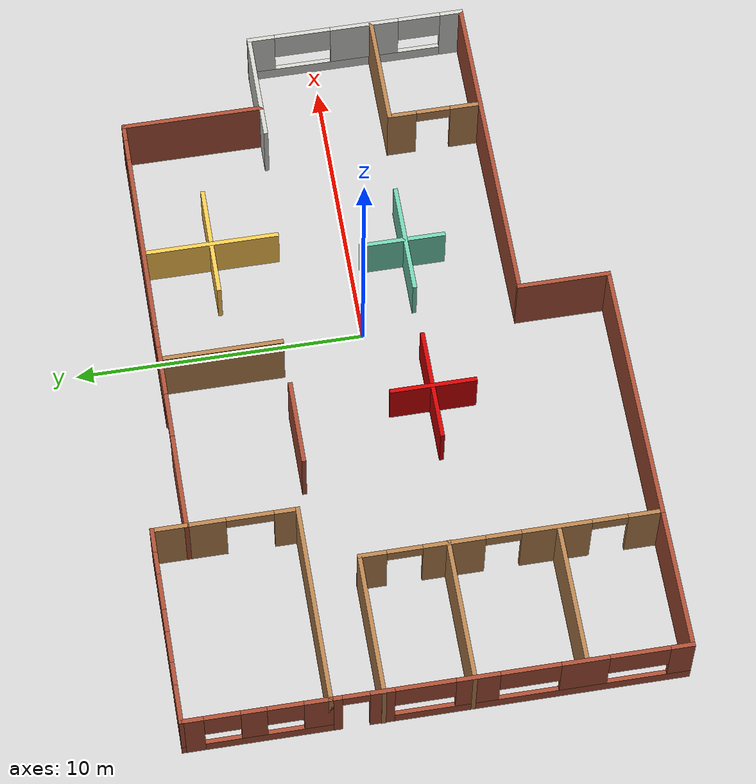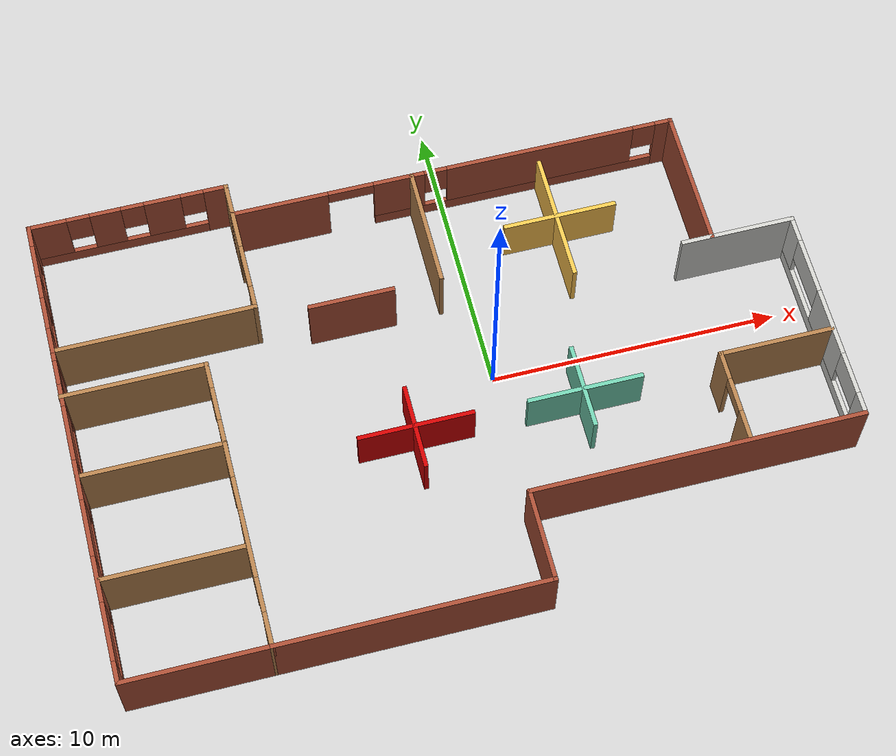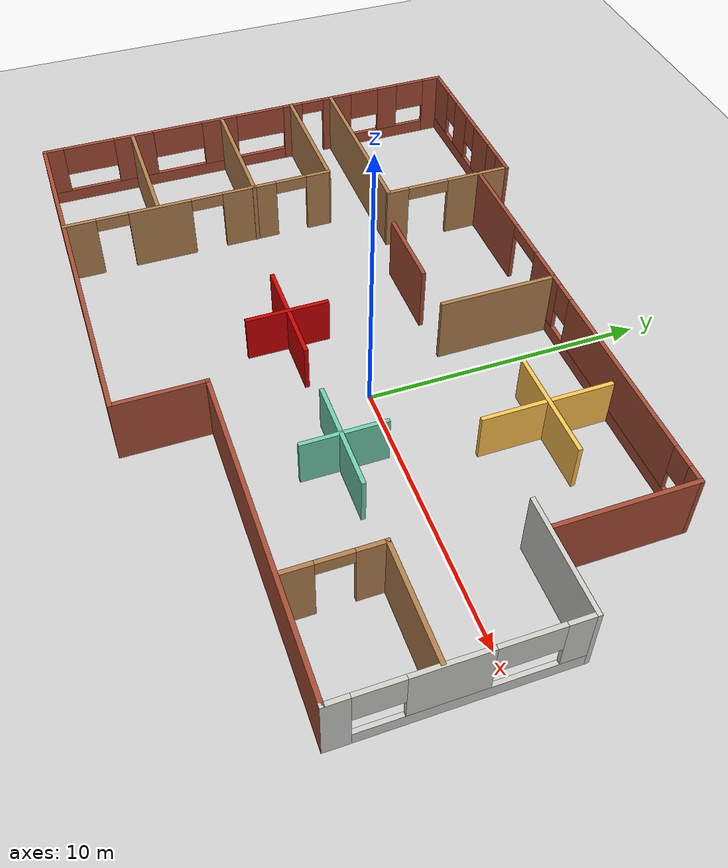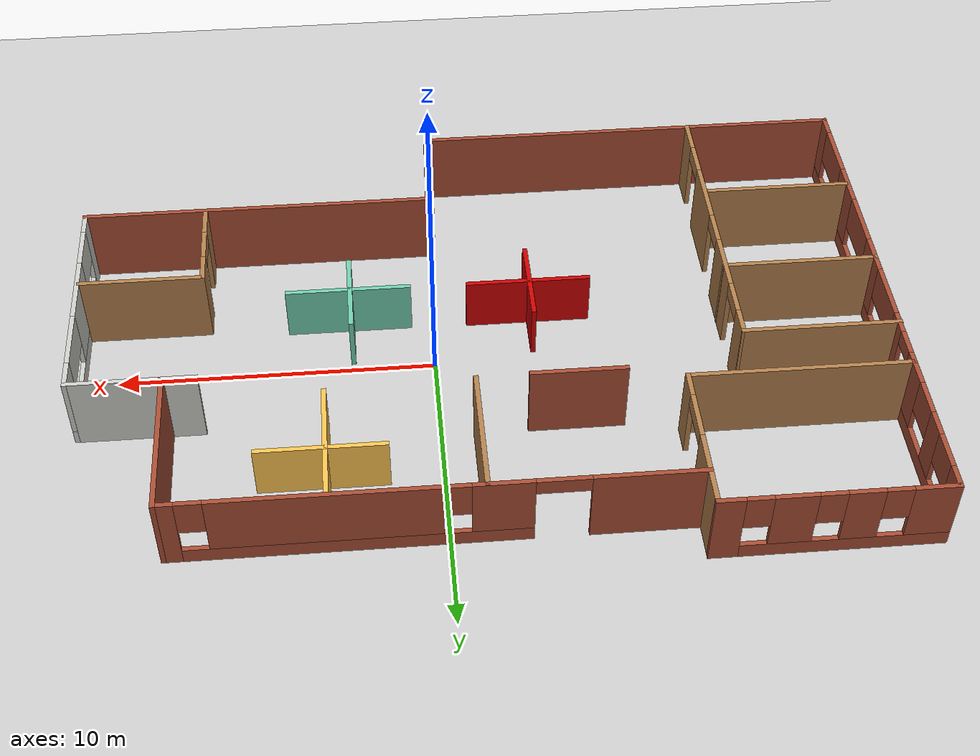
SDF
<sdf version="1.6">
 <world name="default">
  <model name="ground_plane">
   <static>1</static>
   <link name="link">
    <collision name="collision">
     <geometry><plane><normal>0 0 1</normal><size>100 100</size></plane></geometry>
     <surface>
      <contact><collide_bitmask>65535</collide_bitmask></contact>
      <friction><ode><mu>100</mu><mu2>50</mu2></ode></friction>
     </surface>
    </collision>
    <visual name="visual">
     <cast_shadows>0</cast_shadows>
     <geometry><plane><normal>0 0 1</normal><size>100 100</size></plane></geometry>
     <material>
      <script><uri>file://media/materials/scripts/gazebo.material</uri><name>Gazebo/Grey</name></script>
     </material>
    </visual>
   </link>
  </model>
  <model name="office">
   <pose>-1.5738 -0.08796 0 0 -0 0</pose>
   <link name="Wall_0">
    <pose>-12.6413 5.92507 0 0 -0 -1.5708</pose>
    <visual name="Wall_0_Visual_0">
     <pose>-2.10102 0 1.25 0 -0 0</pose>
     <geometry><box><size>0.79796 0.15 2.5</size></box></geometry>
     <material>
      <script><uri>file://media/materials/scripts/gazebo.material</uri><name>Gazebo/Bricks</name></script>
      <ambient>1 1 1 1</ambient>
     </material>
     <meta><layer>0</layer></meta>
    </visual>
    <collision name="Wall_0_Collision_0">
     <geometry><box><size>0.79796 0.15 2.5</size></box></geometry>
     <pose>-2.10102 0 1.25 0 -0 0</pose>
    </collision>
    <visual name="Wall_0_Visual_1">
     <pose>0.39898 0 0.25 0 -0 0</pose>
     <geometry><box><size>4.20204 0.15 0.5</size></box></geometry>
     <material>
      <script><uri>file://media/materials/scripts/gazebo.material</uri><name>Gazebo/Bricks</name></script>
      <ambient>1 1 1 1</ambient>
     </material>
     <meta><layer>0</layer></meta>
    </visual>
    <collision name="Wall_0_Collision_1">
     <geometry><box><size>4.20204 0.15 0.5</size></box></geometry>
     <pose>0.39898 0 0.25 0 -0 0</pose>
    </collision>
    <visual name="Wall_0_Visual_2">
     <pose>-0.076315 0 1.5 0 -0 0</pose>
     <geometry><box><size>0.851451 0.15 2</size></box></geometry>
     <material>
      <script><uri>file://media/materials/scripts/gazebo.material</uri><name>Gazebo/Bricks</name></script>
      <ambient>1 1 1 1</ambient>
     </material>
     <meta><layer>0</layer></meta>
    </visual>
    <collision name="Wall_0_Collision_2">
     <geometry><box><size>0.851451 0.15 2</size></box></geometry>
     <pose>-0.076315 0 1.5 0 -0 0</pose>
    </collision>
    <visual name="Wall_0_Visual_3">
     <pose>2.0247 0 1.5 0 -0 0</pose>
     <geometry><box><size>0.95059 0.15 2</size></box></geometry>
     <material>
      <script><uri>file://media/materials/scripts/gazebo.material</uri><name>Gazebo/Bricks</name></script>
      <ambient>1 1 1 1</ambient>
     </material>
     <meta><layer>0</layer></meta>
    </visual>
    <collision name="Wall_0_Collision_3">
     <geometry><box><size>0.95059 0.15 2</size></box></geometry>
     <pose>2.0247 0 1.5 0 -0 0</pose>
    </collision>
    <visual name="Wall_0_Visual_4">
     <pose>-1.10204 0 1.9 0 -0 0</pose>
     <geometry><box><size>1.2 0.15 1.2</size></box></geometry>
     <material>
      <script><uri>file://media/materials/scripts/gazebo.material</uri><name>Gazebo/Bricks</name></script>
      <ambient>1 1 1 1</ambient>
     </material>
     <meta><layer>0</layer></meta>
    </visual>
    <collision name="Wall_0_Collision_4">
     <geometry><box><size>1.2 0.15 1.2</size></box></geometry>
     <pose>-1.10204 0 1.9 0 -0 0</pose>
    </collision>
    <visual name="Wall_0_Visual_5">
     <pose>0.94941 0 1.9 0 -0 0</pose>
     <geometry><box><size>1.2 0.15 1.2</size></box></geometry>
     <material>
      <script><uri>file://media/materials/scripts/gazebo.material</uri><name>Gazebo/Bricks</name></script>
      <ambient>1 1 1 1</ambient>
     </material>
     <meta><layer>0</layer></meta>
    </visual>
    <collision name="Wall_0_Collision_5">
     <geometry><box><size>1.2 0.15 1.2</size></box></geometry>
     <pose>0.94941 0 1.9 0 -0 0</pose>
    </collision>
   </link>
   <link name="Wall_1">
    <collision name="Wall_1_Collision">
     <geometry><box><size>7 0.15 2.5</size></box></geometry>
     <pose>0 0 1.25 0 -0 0</pose>
    </collision>
    <visual name="Wall_1_Visual">
     <pose>0 0 1.25 0 -0 0</pose>
     <geometry><box><size>7 0.15 2.5</size></box></geometry>
     <material>
      <script><uri>file://media/materials/scripts/gazebo.material</uri><name>Gazebo/Wood</name></script>
      <ambient>1 1 1 1</ambient>
     </material>
     <meta><layer>0</layer></meta>
    </visual>
    <pose>-9.21631 3.50007 0 0 -0 0</pose>
   </link>
   <link name="Wall_12">
    <collision name="Wall_12_Collision">
     <geometry><box><size>4.75 0.15 2.5</size></box></geometry>
     <pose>0 0 1.25 0 -0 0</pose>
    </collision>
    <visual name="Wall_12_Visual">
     <pose>0 0 1.25 0 -0 0</pose>
     <geometry><box><size>4.75 0.15 2.5</size></box></geometry>
     <material>
      <script><uri>file://media/materials/scripts/gazebo.material</uri><name>Gazebo/Wood</name></script>
      <ambient>1 1 1 1</ambient>
     </material>
     <meta><layer>0</layer></meta>
    </visual>
    <pose>-10.2516 -4.8726 0 0 -0 0</pose>
   </link>
   <link name="Wall_19">
    <collision name="Wall_19_Collision">
     <geometry><box><size>5 0.15 2.5</size></box></geometry>
     <pose>0 0 1.25 0 -0 0</pose>
    </collision>
    <visual name="Wall_19_Visual">
     <pose>0 0 1.25 0 -0 0</pose>
     <geometry><box><size>5 0.15 2.5</size></box></geometry>
     <material>
      <script><uri>file://media/materials/scripts/gazebo.material</uri><name>Gazebo/Wood</name></script>
      <ambient>1 1 1 1</ambient>
     </material>
     <meta><layer>0</layer></meta>
    </visual>
    <pose>-10.2173 -1.19338 0 0 -0 0</pose>
   </link>
   <link name="Wall_2">
    <pose>-5.79131 5.92507 0 0 -0 1.5708</pose>
    <visual name="Wall_2_Visual_0">
     <pose>-2.06484 0 1.25 0 -0 0</pose>
     <geometry><box><size>0.870327 0.15 2.5</size></box></geometry>
     <material>
      <script><uri>file://media/materials/scripts/gazebo.material</uri><name>Gazebo/Wood</name></script>
      <ambient>1 1 1 1</ambient>
     </material>
     <meta><layer>0</layer></meta>
    </visual>
    <collision name="Wall_2_Collision_0">
     <geometry><box><size>0.870327 0.15 2.5</size></box></geometry>
     <pose>-2.06484 0 1.25 0 -0 0</pose>
    </collision>
    <visual name="Wall_2_Visual_1">
     <pose>1.23516 0 1.25 0 -0 0</pose>
     <geometry><box><size>2.52967 0.15 2.5</size></box></geometry>
     <material>
      <script><uri>file://media/materials/scripts/gazebo.material</uri><name>Gazebo/Wood</name></script>
      <ambient>1 1 1 1</ambient>
     </material>
     <meta><layer>0</layer></meta>
    </visual>
    <collision name="Wall_2_Collision_1">
     <geometry><box><size>2.52967 0.15 2.5</size></box></geometry>
     <pose>1.23516 0 1.25 0 -0 0</pose>
    </collision>
    <visual name="Wall_2_Visual_2">
     <pose>-0.829673 0 2.25 0 -0 0</pose>
     <geometry><box><size>1.6 0.15 0.5</size></box></geometry>
     <material>
      <script><uri>file://media/materials/scripts/gazebo.material</uri><name>Gazebo/Wood</name></script>
      <ambient>1 1 1 1</ambient>
     </material>
     <meta><layer>0</layer></meta>
    </visual>
    <collision name="Wall_2_Collision_2">
     <geometry><box><size>1.6 0.15 0.5</size></box></geometry>
     <pose>-0.829673 0 2.25 0 -0 0</pose>
    </collision>
   </link>
   <link name="Wall_21">
    <collision name="Wall_21_Collision">
     <geometry><box><size>9.25 0.15 2.5</size></box></geometry>
     <pose>0 0 1.25 0 -0 0</pose>
    </collision>
    <visual name="Wall_21_Visual">
     <pose>0 0 1.25 0 -0 0</pose>
     <geometry><box><size>9.25 0.15 2.5</size></box></geometry>
     <material>
      <script><uri>file://media/materials/scripts/gazebo.material</uri><name>Gazebo/Bricks</name></script>
      <ambient>1 1 1 1</ambient>
     </material>
     <meta><layer>0</layer></meta>
    </visual>
    <pose>-3.24131 -8.34993 0 0 -0 0</pose>
   </link>
   <link name="Wall_22">
    <collision name="Wall_22_Collision">
     <geometry><box><size>3.25 0.15 2.5</size></box></geometry>
     <pose>0 0 1.25 0 -0 0</pose>
    </collision>
    <visual name="Wall_22_Visual">
     <pose>0 0 1.25 0 -0 0</pose>
     <geometry><box><size>3.25 0.15 2.5</size></box></geometry>
     <material>
      <script><uri>file://media/materials/scripts/gazebo.material</uri><name>Gazebo/Bricks</name></script>
      <ambient>1 1 1 1</ambient>
     </material>
     <meta><layer>0</layer></meta>
    </visual>
    <pose>1.30869 -6.79992 0 0 -0 1.5708</pose>
   </link>
   <link name="Wall_23">
    <collision name="Wall_23_Collision">
     <geometry><box><size>11.5 0.15 2.5</size></box></geometry>
     <pose>0 0 1.25 0 -0 0</pose>
    </collision>
    <visual name="Wall_23_Visual">
     <pose>0 0 1.25 0 -0 0</pose>
     <geometry><box><size>11.5 0.15 2.5</size></box></geometry>
     <material>
      <script><uri>file://media/materials/scripts/gazebo.material</uri><name>Gazebo/Bricks</name></script>
      <ambient>1 1 1 1</ambient>
     </material>
     <meta><layer>0</layer></meta>
    </visual>
    <pose>6.98369 -5.24993 0 0 -0 0</pose>
   </link>
   <link name="Wall_24">
    <pose>12.6587 -1.44992 0 0 -0 1.5708</pose>
    <visual name="Wall_24_Visual_0">
     <pose>-3.45904 0 1.25 0 -0 0</pose>
     <geometry><box><size>0.831925 0.15 2.5</size></box></geometry>
     <material>
      <script><uri>file://media/materials/scripts/gazebo.material</uri><name>Gazebo/CeilingTiled</name></script>
      <ambient>1 1 1 1</ambient>
     </material>
     <meta><layer>0</layer></meta>
    </visual>
    <collision name="Wall_24_Collision_0">
     <geometry><box><size>0.831925 0.15 2.5</size></box></geometry>
     <pose>-3.45904 0 1.25 0 -0 0</pose>
    </collision>
    <visual name="Wall_24_Visual_1">
     <pose>0.415962 0 0.25 0 -0 0</pose>
     <geometry><box><size>6.91807 0.15 0.5</size></box></geometry>
     <material>
      <script><uri>file://media/materials/scripts/gazebo.material</uri><name>Gazebo/CeilingTiled</name></script>
      <ambient>1 1 1 1</ambient>
     </material>
     <meta><layer>0</layer></meta>
    </visual>
    <collision name="Wall_24_Collision_1">
     <geometry><box><size>6.91807 0.15 0.5</size></box></geometry>
     <pose>0.415962 0 0.25 0 -0 0</pose>
    </collision>
    <visual name="Wall_24_Visual_2">
     <pose>-0.320599 0 1.5 0 -0 0</pose>
     <geometry><box><size>2.44495 0.15 2</size></box></geometry>
     <material>
      <script><uri>file://media/materials/scripts/gazebo.material</uri><name>Gazebo/CeilingTiled</name></script>
      <ambient>1 1 1 1</ambient>
     </material>
     <meta><layer>0</layer></meta>
    </visual>
    <collision name="Wall_24_Collision_2">
     <geometry><box><size>2.44495 0.15 2</size></box></geometry>
     <pose>-0.320599 0 1.5 0 -0 0</pose>
    </collision>
    <visual name="Wall_24_Visual_3">
     <pose>3.38844 0 1.5 0 -0 0</pose>
     <geometry><box><size>0.973122 0.15 2</size></box></geometry>
     <material>
      <script><uri>file://media/materials/scripts/gazebo.material</uri><name>Gazebo/CeilingTiled</name></script>
      <ambient>1 1 1 1</ambient>
     </material>
     <meta><layer>0</layer></meta>
    </visual>
    <collision name="Wall_24_Collision_3">
     <geometry><box><size>0.973122 0.15 2</size></box></geometry>
     <pose>3.38844 0 1.5 0 -0 0</pose>
    </collision>
    <visual name="Wall_24_Visual_4">
     <pose>-2.29307 0 1.9 0 -0 0</pose>
     <geometry><box><size>1.5 0.15 1.2</size></box></geometry>
     <material>
      <script><uri>file://media/materials/scripts/gazebo.material</uri><name>Gazebo/CeilingTiled</name></script>
      <ambient>1 1 1 1</ambient>
     </material>
     <meta><layer>0</layer></meta>
    </visual>
    <collision name="Wall_24_Collision_4">
     <geometry><box><size>1.5 0.15 1.2</size></box></geometry>
     <pose>-2.29307 0 1.9 0 -0 0</pose>
    </collision>
    <visual name="Wall_24_Visual_5">
     <pose>1.90188 0 1.9 0 -0 0</pose>
     <geometry><box><size>2 0.15 1.2</size></box></geometry>
     <material>
      <script><uri>file://media/materials/scripts/gazebo.material</uri><name>Gazebo/CeilingTiled</name></script>
      <ambient>1 1 1 1</ambient>
     </material>
     <meta><layer>0</layer></meta>
    </visual>
    <collision name="Wall_24_Collision_5">
     <geometry><box><size>2 0.15 1.2</size></box></geometry>
     <pose>1.90188 0 1.9 0 -0 0</pose>
    </collision>
   </link>
   <link name="Wall_25">
    <collision name="Wall_25_Collision">
     <geometry><box><size>4 0.15 2.5</size></box></geometry>
     <pose>0 0 1.25 0 -0 0</pose>
    </collision>
    <visual name="Wall_25_Visual">
     <pose>0 0 1.25 0 -0 0</pose>
     <geometry><box><size>4 0.15 2.5</size></box></geometry>
     <material>
      <script><uri>file://media/materials/scripts/gazebo.material</uri><name>Gazebo/CeilingTiled</name></script>
      <ambient>1 1 1 1</ambient>
     </material>
     <meta><layer>0</layer></meta>
    </visual>
    <pose>10.7337 2.35007 0 0 -0 3.14159</pose>
   </link>
   <link name="Wall_27">
    <collision name="Wall_27_Collision">
     <geometry><box><size>4 0.15 2.5</size></box></geometry>
     <pose>0 0 1.25 0 -0 0</pose>
    </collision>
    <visual name="Wall_27_Visual">
     <pose>0 0 1.25 0 -0 0</pose>
     <geometry><box><size>4 0.15 2.5</size></box></geometry>
     <material>
      <script><uri>file://media/materials/scripts/gazebo.material</uri><name>Gazebo/Wood</name></script>
      <ambient>1 1 1 1</ambient>
     </material>
     <meta><layer>0</layer></meta>
    </visual>
    <pose>10.6699 -2.02159 0 0 -0 3.14159</pose>
   </link>
   <link name="Wall_28">
    <pose>8.74488 -3.57159 0 0 -0 -1.5708</pose>
    <visual name="Wall_28_Visual_0">
     <pose>-1.11107 0 1.25 0 -0 0</pose>
     <geometry><box><size>1.02786 0.15 2.5</size></box></geometry>
     <material>
      <script><uri>file://media/materials/scripts/gazebo.material</uri><name>Gazebo/Wood</name></script>
      <ambient>1 1 1 1</ambient>
     </material>
     <meta><layer>0</layer></meta>
    </visual>
    <collision name="Wall_28_Collision_0">
     <geometry><box><size>1.02786 0.15 2.5</size></box></geometry>
     <pose>-1.11107 0 1.25 0 -0 0</pose>
    </collision>
    <visual name="Wall_28_Visual_1">
     <pose>1.11393 0 1.25 0 -0 0</pose>
     <geometry><box><size>1.02214 0.15 2.5</size></box></geometry>
     <material>
      <script><uri>file://media/materials/scripts/gazebo.material</uri><name>Gazebo/Wood</name></script>
      <ambient>1 1 1 1</ambient>
     </material>
     <meta><layer>0</layer></meta>
    </visual>
    <collision name="Wall_28_Collision_1">
     <geometry><box><size>1.02214 0.15 2.5</size></box></geometry>
     <pose>1.11393 0 1.25 0 -0 0</pose>
    </collision>
    <visual name="Wall_28_Visual_2">
     <pose>0.002857 0 2.25 0 -0 0</pose>
     <geometry><box><size>1.2 0.15 0.5</size></box></geometry>
     <material>
      <script><uri>file://media/materials/scripts/gazebo.material</uri><name>Gazebo/Wood</name></script>
      <ambient>1 1 1 1</ambient>
     </material>
     <meta><layer>0</layer></meta>
    </visual>
    <collision name="Wall_28_Collision_2">
     <geometry><box><size>1.2 0.15 0.5</size></box></geometry>
     <pose>0.002857 0 2.25 0 -0 0</pose>
    </collision>
   </link>
   <link name="Wall_3">
    <pose>-9.21631 8.35008 0 0 -0 3.14159</pose>
    <visual name="Wall_3_Visual_0">
     <pose>-3.0632 0 1.25 0 -0 0</pose>
     <geometry><box><size>0.873598 0.15 2.5</size></box></geometry>
     <material>
      <script><uri>file://media/materials/scripts/gazebo.material</uri><name>Gazebo/Bricks</name></script>
      <ambient>1 1 1 1</ambient>
     </material>
     <meta><layer>0</layer></meta>
    </visual>
    <collision name="Wall_3_Collision_0">
     <geometry><box><size>0.873598 0.15 2.5</size></box></geometry>
     <pose>-3.0632 0 1.25 0 -0 0</pose>
    </collision>
    <visual name="Wall_3_Visual_1">
     <pose>0.436799 0 0.25 0 -0 0</pose>
     <geometry><box><size>6.1264 0.15 0.5</size></box></geometry>
     <material>
      <script><uri>file://media/materials/scripts/gazebo.material</uri><name>Gazebo/Bricks</name></script>
      <ambient>1 1 1 1</ambient>
     </material>
     <meta><layer>0</layer></meta>
    </visual>
    <collision name="Wall_3_Collision_1">
     <geometry><box><size>6.1264 0.15 0.5</size></box></geometry>
     <pose>0.436799 0 0.25 0 -0 0</pose>
    </collision>
    <visual name="Wall_3_Visual_2">
     <pose>-1.18753 0 1.5 0 -0 0</pose>
     <geometry><box><size>1.27775 0.15 2</size></box></geometry>
     <material>
      <script><uri>file://media/materials/scripts/gazebo.material</uri><name>Gazebo/Bricks</name></script>
      <ambient>1 1 1 1</ambient>
     </material>
     <meta><layer>0</layer></meta>
    </visual>
    <collision name="Wall_3_Collision_2">
     <geometry><box><size>1.27775 0.15 2</size></box></geometry>
     <pose>-1.18753 0 1.5 0 -0 0</pose>
    </collision>
    <visual name="Wall_3_Visual_3">
     <pose>0.791597 0 1.5 0 -0 0</pose>
     <geometry><box><size>1.0805 0.15 2</size></box></geometry>
     <material>
      <script><uri>file://media/materials/scripts/gazebo.material</uri><name>Gazebo/Bricks</name></script>
      <ambient>1 1 1 1</ambient>
     </material>
     <meta><layer>0</layer></meta>
    </visual>
    <collision name="Wall_3_Collision_3">
     <geometry><box><size>1.0805 0.15 2</size></box></geometry>
     <pose>0.791597 0 1.5 0 -0 0</pose>
    </collision>
    <visual name="Wall_3_Visual_4">
     <pose>2.81592 0 1.5 0 -0 0</pose>
     <geometry><box><size>1.36816 0.15 2</size></box></geometry>
     <material>
      <script><uri>file://media/materials/scripts/gazebo.material</uri><name>Gazebo/Bricks</name></script>
      <ambient>1 1 1 1</ambient>
     </material>
     <meta><layer>0</layer></meta>
    </visual>
    <collision name="Wall_3_Collision_4">
     <geometry><box><size>1.36816 0.15 2</size></box></geometry>
     <pose>2.81592 0 1.5 0 -0 0</pose>
    </collision>
    <visual name="Wall_3_Visual_5">
     <pose>-2.2264 0 1.9 0 -0 0</pose>
     <geometry><box><size>0.8 0.15 1.2</size></box></geometry>
     <material>
      <script><uri>file://media/materials/scripts/gazebo.material</uri><name>Gazebo/Bricks</name></script>
      <ambient>1 1 1 1</ambient>
     </material>
     <meta><layer>0</layer></meta>
    </visual>
    <collision name="Wall_3_Collision_5">
     <geometry><box><size>0.8 0.15 1.2</size></box></geometry>
     <pose>-2.2264 0 1.9 0 -0 0</pose>
    </collision>
    <visual name="Wall_3_Visual_6">
     <pose>-0.148651 0 1.9 0 -0 0</pose>
     <geometry><box><size>0.8 0.15 1.2</size></box></geometry>
     <material>
      <script><uri>file://media/materials/scripts/gazebo.material</uri><name>Gazebo/Bricks</name></script>
      <ambient>1 1 1 1</ambient>
     </material>
     <meta><layer>0</layer></meta>
    </visual>
    <collision name="Wall_3_Collision_6">
     <geometry><box><size>0.8 0.15 1.2</size></box></geometry>
     <pose>-0.148651 0 1.9 0 -0 0</pose>
    </collision>
    <visual name="Wall_3_Visual_7">
     <pose>1.73185 0 1.9 0 -0 0</pose>
     <geometry><box><size>0.8 0.15 1.2</size></box></geometry>
     <material>
      <script><uri>file://media/materials/scripts/gazebo.material</uri><name>Gazebo/Bricks</name></script>
      <ambient>1 1 1 1</ambient>
     </material>
     <meta><layer>0</layer></meta>
    </visual>
    <collision name="Wall_3_Collision_7">
     <geometry><box><size>0.8 0.15 1.2</size></box></geometry>
     <pose>1.73185 0 1.9 0 -0 0</pose>
    </collision>
   </link>
   <link name="Wall_30">
    <collision name="Wall_30_Collision">
     <geometry><box><size>5 0.15 2.5</size></box></geometry>
     <pose>0 0 1.25 0 -0 0</pose>
    </collision>
    <visual name="Wall_30_Visual">
     <pose>0 0 1.25 0 -0 0</pose>
     <geometry><box><size>5 0.15 2.5</size></box></geometry>
     <material>
      <script><uri>file://media/materials/scripts/gazebo.material</uri><name>Gazebo/Bricks</name></script>
      <ambient>1 1 1 1</ambient>
     </material>
     <meta><layer>0</layer></meta>
    </visual>
    <pose>9.80511 4.78099 0 0 -0 1.5708</pose>
   </link>
   <link name="Wall_31">
    <pose>2.00511 7.20599 0 0 -0 3.14159</pose>
    <visual name="Wall_31_Visual_0">
     <pose>-7.55649 0 1.25 0 -0 0</pose>
     <geometry><box><size>0.637024 0.15 2.5</size></box></geometry>
     <material>
      <script><uri>file://media/materials/scripts/gazebo.material</uri><name>Gazebo/Bricks</name></script>
      <ambient>1 1 1 1</ambient>
     </material>
     <meta><layer>0</layer></meta>
    </visual>
    <collision name="Wall_31_Collision_0">
     <geometry><box><size>0.637024 0.15 2.5</size></box></geometry>
     <pose>-7.55649 0 1.25 0 -0 0</pose>
    </collision>
    <visual name="Wall_31_Visual_1">
     <pose>6.16793 0 1.25 0 -0 0</pose>
     <geometry><box><size>3.41413 0.15 2.5</size></box></geometry>
     <material>
      <script><uri>file://media/materials/scripts/gazebo.material</uri><name>Gazebo/Bricks</name></script>
      <ambient>1 1 1 1</ambient>
     </material>
     <meta><layer>0</layer></meta>
    </visual>
    <collision name="Wall_31_Collision_1">
     <geometry><box><size>3.41413 0.15 2.5</size></box></geometry>
     <pose>6.16793 0 1.25 0 -0 0</pose>
    </collision>
    <visual name="Wall_31_Visual_2">
     <pose>-2.18855 0 0.25 0 -0 0</pose>
     <geometry><box><size>10.0988 0.15 0.5</size></box></geometry>
     <material>
      <script><uri>file://media/materials/scripts/gazebo.material</uri><name>Gazebo/Bricks</name></script>
      <ambient>1 1 1 1</ambient>
     </material>
     <meta><layer>0</layer></meta>
    </visual>
    <collision name="Wall_31_Collision_2">
     <geometry><box><size>10.0988 0.15 0.5</size></box></geometry>
     <pose>-2.18855 0 0.25 0 -0 0</pose>
    </collision>
    <visual name="Wall_31_Visual_3">
     <pose>-3.09013 0 1.5 0 -0 0</pose>
     <geometry><box><size>6.69569 0.15 2</size></box></geometry>
     <material>
      <script><uri>file://media/materials/scripts/gazebo.material</uri><name>Gazebo/Bricks</name></script>
      <ambient>1 1 1 1</ambient>
     </material>
     <meta><layer>0</layer></meta>
    </visual>
    <collision name="Wall_31_Collision_3">
     <geometry><box><size>6.69569 0.15 2</size></box></geometry>
     <pose>-3.09013 0 1.5 0 -0 0</pose>
    </collision>
    <visual name="Wall_31_Visual_4">
     <pose>1.95929 0 1.5 0 -0 0</pose>
     <geometry><box><size>1.80316 0.15 2</size></box></geometry>
     <material>
      <script><uri>file://media/materials/scripts/gazebo.material</uri><name>Gazebo/Bricks</name></script>
      <ambient>1 1 1 1</ambient>
     </material>
     <meta><layer>0</layer></meta>
    </visual>
    <collision name="Wall_31_Collision_4">
     <geometry><box><size>1.80316 0.15 2</size></box></geometry>
     <pose>1.95929 0 1.5 0 -0 0</pose>
    </collision>
    <visual name="Wall_31_Visual_5">
     <pose>-6.83798 0 1.9 0 -0 0</pose>
     <geometry><box><size>0.8 0.15 1.2</size></box></geometry>
     <material>
      <script><uri>file://media/materials/scripts/gazebo.material</uri><name>Gazebo/Bricks</name></script>
      <ambient>1 1 1 1</ambient>
     </material>
     <meta><layer>0</layer></meta>
    </visual>
    <collision name="Wall_31_Collision_5">
     <geometry><box><size>0.8 0.15 1.2</size></box></geometry>
     <pose>-6.83798 0 1.9 0 -0 0</pose>
    </collision>
    <visual name="Wall_31_Visual_6">
     <pose>0.657708 0 1.9 0 -0 0</pose>
     <geometry><box><size>0.8 0.15 1.2</size></box></geometry>
     <material>
      <script><uri>file://media/materials/scripts/gazebo.material</uri><name>Gazebo/Bricks</name></script>
      <ambient>1 1 1 1</ambient>
     </material>
     <meta><layer>0</layer></meta>
    </visual>
    <collision name="Wall_31_Collision_6">
     <geometry><box><size>0.8 0.15 1.2</size></box></geometry>
     <pose>0.657708 0 1.9 0 -0 0</pose>
    </collision>
    <visual name="Wall_31_Visual_7">
     <pose>3.66087 0 2.25 0 -0 0</pose>
     <geometry><box><size>1.6 0.15 0.5</size></box></geometry>
     <material>
      <script><uri>file://media/materials/scripts/gazebo.material</uri><name>Gazebo/Bricks</name></script>
      <ambient>1 1 1 1</ambient>
     </material>
     <meta><layer>0</layer></meta>
    </visual>
    <collision name="Wall_31_Collision_7">
     <geometry><box><size>1.6 0.15 0.5</size></box></geometry>
     <pose>3.66087 0 2.25 0 -0 0</pose>
    </collision>
   </link>
   <link name="Wall_33">
    <collision name="Wall_33_Collision">
     <geometry><box><size>4.25 0.15 2.5</size></box></geometry>
     <pose>0 0 1.25 0 -0 0</pose>
    </collision>
    <visual name="Wall_33_Visual">
     <pose>0 0 1.25 0 -0 0</pose>
     <geometry><box><size>4.25 0.15 2.5</size></box></geometry>
     <material>
      <script><uri>file://media/materials/scripts/gazebo.material</uri><name>Gazebo/Wood</name></script>
      <ambient>1 1 1 1</ambient>
     </material>
     <meta><layer>0</layer></meta>
    </visual>
    <pose>0.500764 5.12338 0 0 -0 -1.5708</pose>
   </link>
   <link name="Wall_35">
    <collision name="Wall_35_Collision">
     <geometry><box><size>4.75 0.15 1.8</size></box></geometry>
     <pose>0 0 0.9 0 -0 0</pose>
    </collision>
    <visual name="Wall_35_Visual">
     <pose>0 0 0.9 0 -0 0</pose>
     <geometry><box><size>4.75 0.15 1.8</size></box></geometry>
     <material>
      <script><uri>file://media/materials/scripts/gazebo.material</uri><name>Gazebo/Grey</name></script>
      <ambient>1 0.764706 0.305882 1</ambient>
     </material>
     <meta><layer>0</layer></meta>
    </visual>
    <pose>5.05557 4.85856 0 0 -0 -1.5708</pose>
   </link>
   <link name="Wall_37">
    <collision name="Wall_37_Collision">
     <geometry><box><size>4 0.15 1.8</size></box></geometry>
     <pose>0 0 0.9 0 -0 0</pose>
    </collision>
    <visual name="Wall_37_Visual">
     <pose>0 0 0.9 0 -0 0</pose>
     <geometry><box><size>4 0.15 1.8</size></box></geometry>
     <material>
      <script><uri>file://media/materials/scripts/gazebo.material</uri><name>Gazebo/Grey</name></script>
      <ambient>1 0.764706 0.305882 1</ambient>
     </material>
     <meta><layer>0</layer></meta>
    </visual>
    <pose>5.17957 4.83056 0 0 -0 0</pose>
   </link>
   <link name="Wall_39">
    <collision name="Wall_39_Collision">
     <geometry><box><size>3 0.15 2.5</size></box></geometry>
     <pose>0 0 1.25 0 -0 0</pose>
    </collision>
    <visual name="Wall_39_Visual">
     <pose>0 0 1.25 0 -0 0</pose>
     <geometry><box><size>3 0.15 2.5</size></box></geometry>
     <material>
      <script><uri>file://media/materials/scripts/gazebo.material</uri><name>Gazebo/Bricks</name></script>
      <ambient>1 1 1 1</ambient>
     </material>
     <meta><layer>0</layer></meta>
    </visual>
    <pose>-2.60246 3.02942 0 0 -0 3.14159</pose>
   </link>
   <link name="Wall_41">
    <collision name="Wall_41_Collision">
     <geometry><box><size>4 0.15 1.8</size></box></geometry>
     <pose>0 0 0.9 0 -0 0</pose>
    </collision>
    <visual name="Wall_41_Visual">
     <pose>0 0 0.9 0 -0 0</pose>
     <geometry><box><size>4 0.15 1.8</size></box></geometry>
     <material>
      <script><uri>file://media/materials/scripts/gazebo.material</uri><name>Gazebo/Grey</name></script>
      <ambient>0.8 0 0 1</ambient>
     </material>
     <meta><layer>0</layer></meta>
    </visual>
    <pose>-1.56643 -1.75744 0 0 -0 0</pose>
   </link>
   <link name="Wall_43">
    <collision name="Wall_43_Collision">
     <geometry><box><size>3 0.15 1.8</size></box></geometry>
     <pose>0 0 0.9 0 -0 0</pose>
    </collision>
    <visual name="Wall_43_Visual">
     <pose>0 0 0.9 0 -0 0</pose>
     <geometry><box><size>3 0.15 1.8</size></box></geometry>
     <material>
      <script><uri>file://media/materials/scripts/gazebo.material</uri><name>Gazebo/Grey</name></script>
      <ambient>0.8 0 0 1</ambient>
     </material>
     <meta><layer>0</layer></meta>
    </visual>
    <pose>-1.61128 -1.78879 0 0 -0 -1.5708</pose>
   </link>
   <link name="Wall_45">
    <collision name="Wall_45_Collision">
     <geometry><box><size>4 0.15 1.8</size></box></geometry>
     <pose>0 0 0.9 0 -0 0</pose>
    </collision>
    <visual name="Wall_45_Visual">
     <pose>0 0 0.9 0 -0 0</pose>
     <geometry><box><size>4 0.15 1.8</size></box></geometry>
     <material>
      <script><uri>file://media/materials/scripts/gazebo.material</uri><name>Gazebo/Grey</name></script>
      <ambient>0.435294 0.796078 0.67451 1</ambient>
     </material>
     <meta><layer>0</layer></meta>
    </visual>
    <pose>4.20657 -1.80944 0 0 -0 0</pose>
   </link>
   <link name="Wall_47">
    <collision name="Wall_47_Collision">
     <geometry><box><size>3 0.15 1.8</size></box></geometry>
     <pose>0 0 0.9 0 -0 0</pose>
    </collision>
    <visual name="Wall_47_Visual">
     <pose>0 0 0.9 0 -0 0</pose>
     <geometry><box><size>3 0.15 1.8</size></box></geometry>
     <material>
      <script><uri>file://media/materials/scripts/gazebo.material</uri><name>Gazebo/Grey</name></script>
      <ambient>0.435294 0.796078 0.67451 1</ambient>
     </material>
     <meta><layer>0</layer></meta>
    </visual>
    <pose>4.14857 -1.70944 0 0 -0 -1.5708</pose>
   </link>
   <link name="Wall_5">
    <pose>-12.6413 -2.42492 0 0 -0 -1.5708</pose>
    <visual name="Wall_5_Visual_0">
     <pose>-5.7769 0 1.25 0 -0 0</pose>
     <geometry><box><size>0.446198 0.15 2.5</size></box></geometry>
     <material>
      <script><uri>file://media/materials/scripts/gazebo.material</uri><name>Gazebo/Bricks</name></script>
      <ambient>1 1 1 1</ambient>
     </material>
     <meta><layer>0</layer></meta>
    </visual>
    <collision name="Wall_5_Collision_0">
     <geometry><box><size>0.446198 0.15 2.5</size></box></geometry>
     <pose>-5.7769 0 1.25 0 -0 0</pose>
    </collision>
    <visual name="Wall_5_Visual_1">
     <pose>-4.24561 0 1.25 0 -0 0</pose>
     <geometry><box><size>0.816375 0.15 2.5</size></box></geometry>
     <material>
      <script><uri>file://media/materials/scripts/gazebo.material</uri><name>Gazebo/Bricks</name></script>
      <ambient>1 1 1 1</ambient>
     </material>
     <meta><layer>0</layer></meta>
    </visual>
    <collision name="Wall_5_Collision_1">
     <geometry><box><size>0.816375 0.15 2.5</size></box></geometry>
     <pose>-4.24561 0 1.25 0 -0 0</pose>
    </collision>
    <visual name="Wall_5_Visual_2">
     <pose>1.08129 0 0.25 0 -0 0</pose>
     <geometry><box><size>9.83743 0.15 0.5</size></box></geometry>
     <material>
      <script><uri>file://media/materials/scripts/gazebo.material</uri><name>Gazebo/Bricks</name></script>
      <ambient>1 1 1 1</ambient>
     </material>
     <meta><layer>0</layer></meta>
    </visual>
    <collision name="Wall_5_Collision_2">
     <geometry><box><size>9.83743 0.15 0.5</size></box></geometry>
     <pose>1.08129 0 0.25 0 -0 0</pose>
    </collision>
    <visual name="Wall_5_Visual_3">
     <pose>-1.11473 0 1.5 0 -0 0</pose>
     <geometry><box><size>1.44538 0.15 2</size></box></geometry>
     <material>
      <script><uri>file://media/materials/scripts/gazebo.material</uri><name>Gazebo/Bricks</name></script>
      <ambient>1 1 1 1</ambient>
     </material>
     <meta><layer>0</layer></meta>
    </visual>
    <collision name="Wall_5_Collision_3">
     <geometry><box><size>1.44538 0.15 2</size></box></geometry>
     <pose>-1.11473 0 1.5 0 -0 0</pose>
    </collision>
    <visual name="Wall_5_Visual_4">
     <pose>2.40298 0 1.5 0 -0 0</pose>
     <geometry><box><size>1.59004 0.15 2</size></box></geometry>
     <material>
      <script><uri>file://media/materials/scripts/gazebo.material</uri><name>Gazebo/Bricks</name></script>
      <ambient>1 1 1 1</ambient>
     </material>
     <meta><layer>0</layer></meta>
    </visual>
    <collision name="Wall_5_Collision_4">
     <geometry><box><size>1.59004 0.15 2</size></box></geometry>
     <pose>2.40298 0 1.5 0 -0 0</pose>
    </collision>
    <visual name="Wall_5_Visual_5">
     <pose>5.599 0 1.5 0 -0 0</pose>
     <geometry><box><size>0.802003 0.15 2</size></box></geometry>
     <material>
      <script><uri>file://media/materials/scripts/gazebo.material</uri><name>Gazebo/Bricks</name></script>
      <ambient>1 1 1 1</ambient>
     </material>
     <meta><layer>0</layer></meta>
    </visual>
    <collision name="Wall_5_Collision_5">
     <geometry><box><size>0.802003 0.15 2</size></box></geometry>
     <pose>5.599 0 1.5 0 -0 0</pose>
    </collision>
    <visual name="Wall_5_Visual_6">
     <pose>-2.83743 0 1.9 0 -0 0</pose>
     <geometry><box><size>2 0.15 1.2</size></box></geometry>
     <material>
      <script><uri>file://media/materials/scripts/gazebo.material</uri><name>Gazebo/Bricks</name></script>
      <ambient>1 1 1 1</ambient>
     </material>
     <meta><layer>0</layer></meta>
    </visual>
    <collision name="Wall_5_Collision_6">
     <geometry><box><size>2 0.15 1.2</size></box></geometry>
     <pose>-2.83743 0 1.9 0 -0 0</pose>
    </collision>
    <visual name="Wall_5_Visual_7">
     <pose>0.607958 0 1.9 0 -0 0</pose>
     <geometry><box><size>2 0.15 1.2</size></box></geometry>
     <material>
      <script><uri>file://media/materials/scripts/gazebo.material</uri><name>Gazebo/Bricks</name></script>
      <ambient>1 1 1 1</ambient>
     </material>
     <meta><layer>0</layer></meta>
    </visual>
    <collision name="Wall_5_Collision_7">
     <geometry><box><size>2 0.15 1.2</size></box></geometry>
     <pose>0.607958 0 1.9 0 -0 0</pose>
    </collision>
    <visual name="Wall_5_Visual_8">
     <pose>4.198 0 1.9 0 -0 0</pose>
     <geometry><box><size>2 0.15 1.2</size></box></geometry>
     <material>
      <script><uri>file://media/materials/scripts/gazebo.material</uri><name>Gazebo/Bricks</name></script>
      <ambient>1 1 1 1</ambient>
     </material>
     <meta><layer>0</layer></meta>
    </visual>
    <collision name="Wall_5_Collision_8">
     <geometry><box><size>2 0.15 1.2</size></box></geometry>
     <pose>4.198 0 1.9 0 -0 0</pose>
    </collision>
    <visual name="Wall_5_Visual_9">
     <pose>-5.1038 0 2.25 0 -0 0</pose>
     <geometry><box><size>0.9 0.15 0.5</size></box></geometry>
     <material>
      <script><uri>file://media/materials/scripts/gazebo.material</uri><name>Gazebo/Bricks</name></script>
      <ambient>1 1 1 1</ambient>
     </material>
     <meta><layer>0</layer></meta>
    </visual>
    <collision name="Wall_5_Collision_9">
     <geometry><box><size>0.9 0.15 0.5</size></box></geometry>
     <pose>-5.1038 0 2.25 0 -0 0</pose>
    </collision>
   </link>
   <link name="Wall_6">
    <collision name="Wall_6_Collision">
     <geometry><box><size>5 0.15 2.5</size></box></geometry>
     <pose>0 0 1.25 0 -0 0</pose>
    </collision>
    <visual name="Wall_6_Visual">
     <pose>0 0 1.25 0 -0 0</pose>
     <geometry><box><size>5 0.15 2.5</size></box></geometry>
     <material>
      <script><uri>file://media/materials/scripts/gazebo.material</uri><name>Gazebo/Bricks</name></script>
      <ambient>1 1 1 1</ambient>
     </material>
     <meta><layer>0</layer></meta>
    </visual>
    <pose>-10.2163 -8.34993 0 0 -0 0</pose>
   </link>
   <link name="Wall_7">
    <pose>-7.8 -3.28797 0 0 -0 1.57251</pose>
    <visual name="Wall_7_Visual_0">
     <pose>-4.52035 0 1.25 0 -0 0</pose>
     <geometry><box><size>1.23327 0.15 2.5</size></box></geometry>
     <material>
      <script><uri>file://media/materials/scripts/gazebo.material</uri><name>Gazebo/Wood</name></script>
      <ambient>0.921569 0.807843 0.615686 1</ambient>
     </material>
     <meta><layer>0</layer></meta>
    </visual>
    <collision name="Wall_7_Collision_0">
     <geometry><box><size>1.23327 0.15 2.5</size></box></geometry>
     <pose>-4.52035 0 1.25 0 -0 0</pose>
    </collision>
    <visual name="Wall_7_Visual_1">
     <pose>-1.52121 0 1.25 0 -0 0</pose>
     <geometry><box><size>2.365 0.15 2.5</size></box></geometry>
     <material>
      <script><uri>file://media/materials/scripts/gazebo.material</uri><name>Gazebo/Wood</name></script>
      <ambient>0.921569 0.807843 0.615686 1</ambient>
     </material>
     <meta><layer>0</layer></meta>
    </visual>
    <collision name="Wall_7_Collision_1">
     <geometry><box><size>2.365 0.15 2.5</size></box></geometry>
     <pose>-1.52121 0 1.25 0 -0 0</pose>
    </collision>
    <visual name="Wall_7_Visual_2">
     <pose>1.90894 0 1.25 0 -0 0</pose>
     <geometry><box><size>2.09531 0.15 2.5</size></box></geometry>
     <material>
      <script><uri>file://media/materials/scripts/gazebo.material</uri><name>Gazebo/Wood</name></script>
      <ambient>0.921569 0.807843 0.615686 1</ambient>
     </material>
     <meta><layer>0</layer></meta>
    </visual>
    <collision name="Wall_7_Collision_2">
     <geometry><box><size>2.09531 0.15 2.5</size></box></geometry>
     <pose>1.90894 0 1.25 0 -0 0</pose>
    </collision>
    <visual name="Wall_7_Visual_3">
     <pose>4.64679 0 1.25 0 -0 0</pose>
     <geometry><box><size>0.980386 0.15 2.5</size></box></geometry>
     <material>
      <script><uri>file://media/materials/scripts/gazebo.material</uri><name>Gazebo/Wood</name></script>
      <ambient>0.921569 0.807843 0.615686 1</ambient>
     </material>
     <meta><layer>0</layer></meta>
    </visual>
    <collision name="Wall_7_Collision_3">
     <geometry><box><size>0.980386 0.15 2.5</size></box></geometry>
     <pose>4.64679 0 1.25 0 -0 0</pose>
    </collision>
    <visual name="Wall_7_Visual_4">
     <pose>-3.30371 0 2.25 0 -0 0</pose>
     <geometry><box><size>1.2 0.15 0.5</size></box></geometry>
     <material>
      <script><uri>file://media/materials/scripts/gazebo.material</uri><name>Gazebo/Wood</name></script>
      <ambient>0.921569 0.807843 0.615686 1</ambient>
     </material>
     <meta><layer>0</layer></meta>
    </visual>
    <collision name="Wall_7_Collision_4">
     <geometry><box><size>1.2 0.15 0.5</size></box></geometry>
     <pose>-3.30371 0 2.25 0 -0 0</pose>
    </collision>
    <visual name="Wall_7_Visual_5">
     <pose>0.26129 0 2.25 0 -0 0</pose>
     <geometry><box><size>1.2 0.15 0.5</size></box></geometry>
     <material>
      <script><uri>file://media/materials/scripts/gazebo.material</uri><name>Gazebo/Wood</name></script>
      <ambient>0.921569 0.807843 0.615686 1</ambient>
     </material>
     <meta><layer>0</layer></meta>
    </visual>
    <collision name="Wall_7_Collision_5">
     <geometry><box><size>1.2 0.15 0.5</size></box></geometry>
     <pose>0.26129 0 2.25 0 -0 0</pose>
    </collision>
    <visual name="Wall_7_Visual_6">
     <pose>3.5566 0 2.25 0 -0 0</pose>
     <geometry><box><size>1.2 0.15 0.5</size></box></geometry>
     <material>
      <script><uri>file://media/materials/scripts/gazebo.material</uri><name>Gazebo/Wood</name></script>
      <ambient>0.921569 0.807843 0.615686 1</ambient>
     </material>
     <meta><layer>0</layer></meta>
    </visual>
    <collision name="Wall_7_Collision_6">
     <geometry><box><size>1.2 0.15 0.5</size></box></geometry>
     <pose>3.5566 0 2.25 0 -0 0</pose>
    </collision>
   </link>
   <link name="Wall_8">
    <collision name="Wall_8_Collision">
     <geometry><box><size>5 0.15 2.5</size></box></geometry>
     <pose>0 0 1.25 0 -0 0</pose>
    </collision>
    <visual name="Wall_8_Visual">
     <pose>0 0 1.25 0 -0 0</pose>
     <geometry><box><size>5 0.15 2.5</size></box></geometry>
     <material>
      <script><uri>file://media/materials/scripts/gazebo.material</uri><name>Gazebo/Wood</name></script>
      <ambient>1 1 1 1</ambient>
     </material>
     <meta><layer>0</layer></meta>
    </visual>
    <pose>-10.2337 1.77399 0 0 -0 3.14159</pose>
   </link>
   <static>1</static>
  </model>
 </world>
</sdf>
